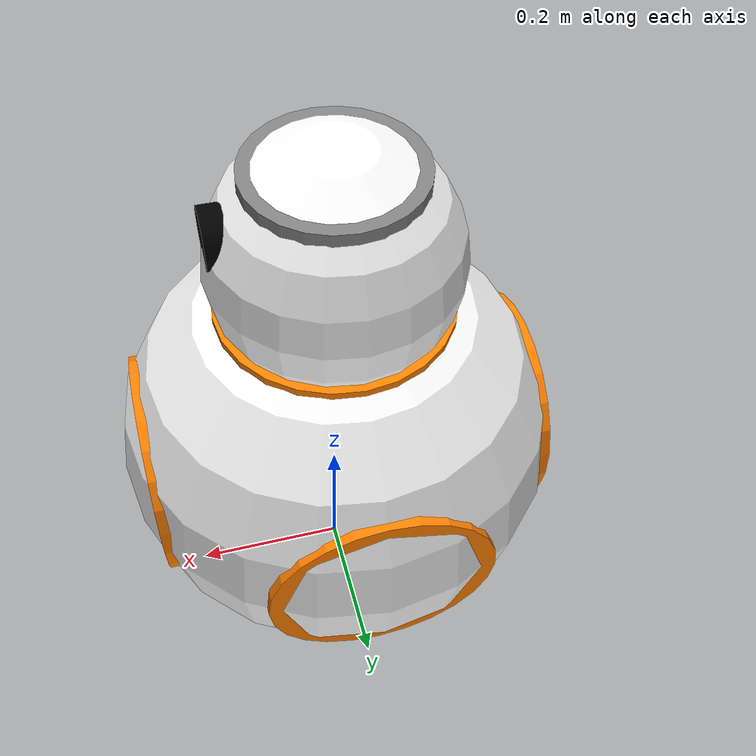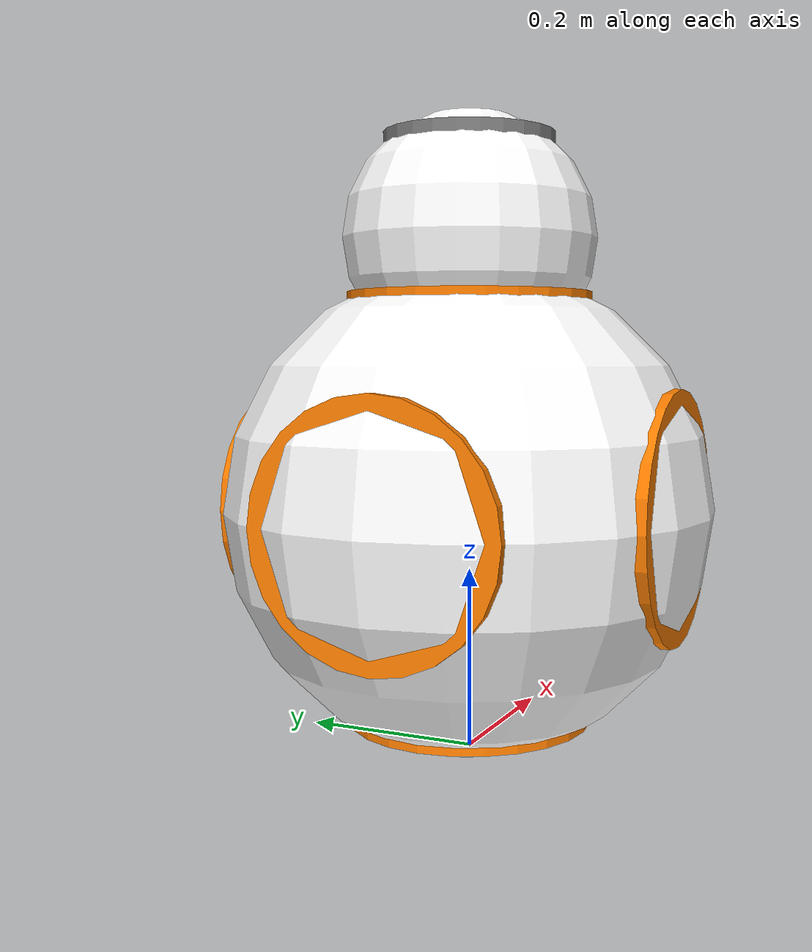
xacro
<?xml version="1.0"?>

<robot name="bb8" xmlns:xacro="http://www.ros.org/wiki/xacro">

<xacro:property name="PI" value="3.1415926535897931"/>

<!-- Body properties -->
<xacro:property name="radius" value=".27"/>

<xacro:macro name="body_cyl" params="name rpy">
    <link name="robot1/${name}">
    <visual>
      <geometry>
        <cylinder radius="${.5*radius}" length="${1.77*radius}"/>
      </geometry>
      <material name="orange"/>
    </visual>
  </link>

  <joint name="${name}" type="fixed">
      <parent link="robot1/main"/>
      <child link="robot1/${name}"/>
      <origin rpy="${rpy}"/>
      </joint>
</xacro:macro>

<material name="blue">
    <color rgba="0 0 .8 1"/>
  </material>
  <material name="black">
    <color rgba="0 0 0 1"/>
  </material>
  <material name="white">
    <color rgba="1 1 1 1"/>
  </material>
  <material name="orange">
    <color rgba="1 .5 0 1"/>
  </material>

    <material name="grey">
    <color rgba=".5 .5 .5 1"/>
  </material>

  <link name="robot1/ground">
  </link>

  <link name="robot1/center">
  </link>

  <joint name="head" type="revolute">
      <axis xyz="0 1 0"/>
      <limit lower="${-PI/4}" upper="${PI/4}" effort="10" velocity="2"/>
      <child link="robot1/center"/>
      <parent link="robot1/ground"/>
    <origin xyz="0 0 ${radius}"/>
   </joint>

     <link name="robot1/target">
  </link>

  <joint name="bait" type="fixed">
      <child link="robot1/target"/>
      <parent link="robot1/ground"/>
    <origin xyz="-.5 0 0"/>
   </joint>

  <link name="robot1/main">
    <visual>
      <geometry>
        <sphere radius="${radius}"/>
      </geometry>
      <material name="white"/>
    </visual>
  </link>

  <joint name="wheel" type="continuous">
    <parent link="robot1/center"/>
    <child link="robot1/main"/>
    <axis xyz="0 1 0"/>
  </joint>

  <xacro:body_cyl name="cx" rpy="${PI/2} 0 0"/>
  <xacro:body_cyl name="cz" rpy="0 0 0"/>
  <xacro:body_cyl name="cy" rpy="0 ${PI/2} 0"/>

  <link name="robot1/head">
      <visual>
      <geometry>
        <sphere radius="${.52*radius}"/>
      </geometry>
      <material name="white"/>
    </visual>
  </link>

  <joint name="neck" type="fixed">
    <parent link="robot1/center"/>
    <child link="robot1/head"/>
    <origin xyz="0 0 ${1.1*radius}"/>
  </joint>

    <link name="robot1/eye">
      <visual>
      <geometry>
          <cylinder radius="${.12*radius}" length="${.35*radius}"/>
      </geometry>
      <material name="black"/>
    </visual>
  </link>

    <joint name="eye" type="fixed">
    <parent link="robot1/head"/>
    <child link="robot1/eye"/>
    <origin xyz = "${.32*radius} 0 ${.2*radius}" rpy="0 ${PI/2} 0"/>
  </joint>

      <link name="robot1/crown">
      <visual>
      <geometry>
          <cylinder radius="${.35*radius}" length="${.35*radius}"/>
      </geometry>
      <material name="grey"/>
    </visual>
  </link>

    <joint name="crown" type="fixed">
    <parent link="robot1/head"/>
    <child link="robot1/crown"/>
    <origin xyz = "0 0 ${.25*radius}"/>
  </joint>

</robot>
